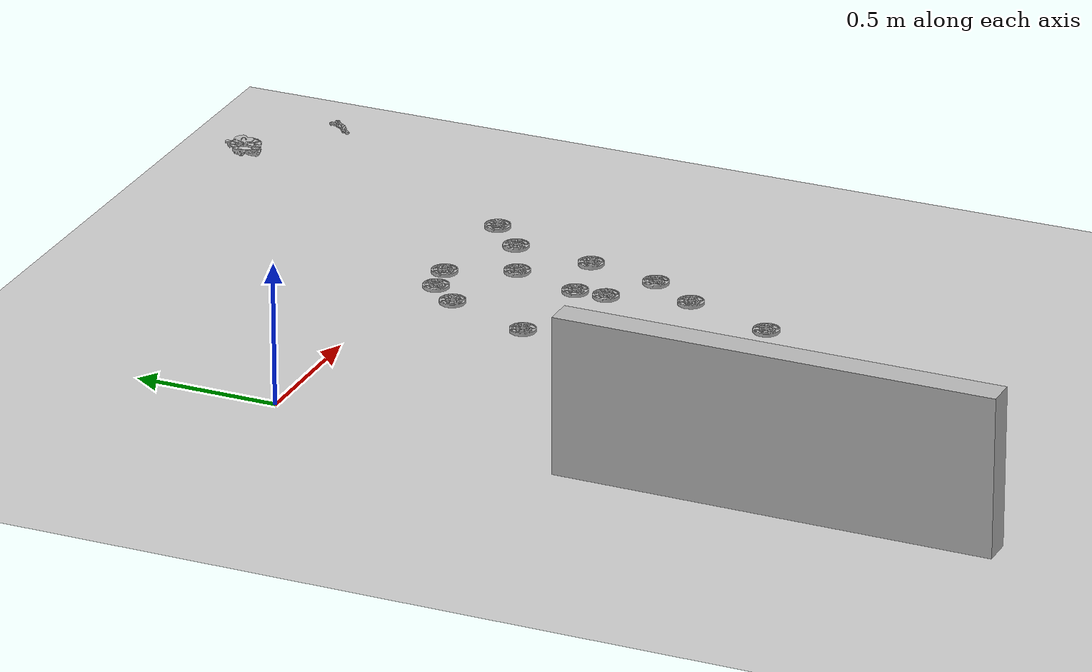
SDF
<sdf version="1.7">
 <world name="default">
  <model name="ground_plane">
   <static>1</static>
   <link name="link">
    <collision name="collision">
     <geometry><plane><normal>0 0 1</normal><size>100 100</size></plane></geometry>
     <surface>
      <contact><collide_bitmask>65535</collide_bitmask></contact>
      <friction><ode><mu>100</mu><mu2>50</mu2></ode></friction>
     </surface>
    </collision>
    <visual name="visual">
     <cast_shadows>0</cast_shadows>
     <geometry><plane><normal>0 0 1</normal><size>100 100</size></plane></geometry>
     <material>
      <script><uri>file://media/materials/scripts/gazebo.material</uri><name>Gazebo/Grey</name></script>
     </material>
    </visual>
   </link>
  </model>
  <model name="HV8">
   <pose>0.966092 -0.194363 0 4.2e-05 1.5e-05 0.009182</pose>
   <static>0</static>
   <link name="HV8">
    <inertial>
     <mass>0.05</mass>
     <inertia><ixx>0.0002</ixx><ixy>0</ixy><ixz>0</ixz><iyy>0.0002</iyy><iyz>0</iyz><izz>0.0002</izz></inertia>
    </inertial>
    <collision name="collishin">
     <geometry><mesh><uri>model://HV8/meshes/HV8_1.stl</uri></mesh></geometry>
    </collision>
    <visual name="visual"><geometry><mesh><uri>model://HV8/meshes/HV8_1.stl</uri></mesh></geometry></visual>
   </link>
  </model>
  <model name="HV8_1">
   <pose>1.46892 -0.203086 -1.8e-05 0.000274 0.000329 0.001747</pose>
   <static>0</static>
   <link name="HV8">
    <inertial>
     <mass>0.05</mass>
     <inertia><ixx>0.0002</ixx><ixy>0</ixy><ixz>0</ixz><iyy>0.0002</iyy><iyz>0</iyz><izz>0.0002</izz></inertia>
    </inertial>
    <collision name="collishin">
     <geometry><mesh><uri>model://HV8/meshes/HV8_1.stl</uri></mesh></geometry>
    </collision>
    <visual name="visual"><geometry><mesh><uri>model://HV8/meshes/HV8_1.stl</uri></mesh></geometry></visual>
   </link>
  </model>
  <model name="HV8_2">
   <pose>1.05789 -0.091912 -1.8e-05 0.000274 0.000329 0.001743</pose>
   <static>0</static>
   <link name="HV8">
    <inertial>
     <mass>0.05</mass>
     <inertia><ixx>0.0002</ixx><ixy>0</ixy><ixz>0</ixz><iyy>0.0002</iyy><iyz>0</iyz><izz>0.0002</izz></inertia>
    </inertial>
    <collision name="collishin">
     <geometry><mesh><uri>model://HV8/meshes/HV8_1.stl</uri></mesh></geometry>
    </collision>
    <visual name="visual"><geometry><mesh><uri>model://HV8/meshes/HV8_1.stl</uri></mesh></geometry></visual>
   </link>
  </model>
  <model name="HV8_7">
   <pose>1.18044 -0.067539 -3e-06 -0.000159 7.4e-05 0.001743</pose>
   <static>0</static>
   <link name="HV8">
    <inertial>
     <mass>0.05</mass>
     <inertia><ixx>0.0002</ixx><ixy>0</ixy><ixz>0</ixz><iyy>0.0002</iyy><iyz>0</iyz><izz>0.0002</izz></inertia>
    </inertial>
    <collision name="collishin">
     <geometry><mesh><uri>model://HV8/meshes/HV8_1.stl</uri></mesh></geometry>
    </collision>
    <visual name="visual"><geometry><mesh><uri>model://HV8/meshes/HV8_1.stl</uri></mesh></geometry></visual>
   </link>
  </model>
  <model name="HV8_8">
   <pose>1.27992 -0.291449 -1.8e-05 0.000274 0.000329 0.001739</pose>
   <static>0</static>
   <link name="HV8">
    <inertial>
     <mass>0.05</mass>
     <inertia><ixx>0.0002</ixx><ixy>0</ixy><ixz>0</ixz><iyy>0.0002</iyy><iyz>0</iyz><izz>0.0002</izz></inertia>
    </inertial>
    <collision name="collishin">
     <geometry><mesh><uri>model://HV8/meshes/HV8_1.stl</uri></mesh></geometry>
    </collision>
    <visual name="visual"><geometry><mesh><uri>model://HV8/meshes/HV8_1.stl</uri></mesh></geometry></visual>
   </link>
  </model>
  <model name="HV8_9">
   <pose>1.20809 -0.535994 -3e-06 -0.000159 7.4e-05 0.001738</pose>
   <static>0</static>
   <link name="HV8">
    <inertial>
     <mass>0.05</mass>
     <inertia><ixx>0.0002</ixx><ixy>0</ixy><ixz>0</ixz><iyy>0.0002</iyy><iyz>0</iyz><izz>0.0002</izz></inertia>
    </inertial>
    <collision name="collishin">
     <geometry><mesh><uri>model://HV8/meshes/HV8_1.stl</uri></mesh></geometry>
    </collision>
    <visual name="visual"><geometry><mesh><uri>model://HV8/meshes/HV8_1.stl</uri></mesh></geometry></visual>
   </link>
  </model>
  <model name="HV8_10">
   <pose>1.01228 -0.727287 -3e-06 -0.000159 7.4e-05 0.002353</pose>
   <static>0</static>
   <link name="HV8">
    <inertial>
     <mass>0.05</mass>
     <inertia><ixx>0.0002</ixx><ixy>0</ixy><ixz>0</ixz><iyy>0.0002</iyy><iyz>0</iyz><izz>0.0002</izz></inertia>
    </inertial>
    <collision name="collishin">
     <geometry><mesh><uri>model://HV8/meshes/HV8_1.stl</uri></mesh></geometry>
    </collision>
    <visual name="visual"><geometry><mesh><uri>model://HV8/meshes/HV8_1.stl</uri></mesh></geometry></visual>
   </link>
  </model>
  <model name="HV8_11">
   <pose>0.857592 -0.819349 -3e-06 -0.000159 7.4e-05 0.001737</pose>
   <static>0</static>
   <link name="HV8">
    <inertial>
     <mass>0.05</mass>
     <inertia><ixx>0.0002</ixx><ixy>0</ixy><ixz>0</ixz><iyy>0.0002</iyy><iyz>0</iyz><izz>0.0002</izz></inertia>
    </inertial>
    <collision name="collishin">
     <geometry><mesh><uri>model://HV8/meshes/HV8_1.stl</uri></mesh></geometry>
    </collision>
    <visual name="visual"><geometry><mesh><uri>model://HV8/meshes/HV8_1.stl</uri></mesh></geometry></visual>
   </link>
  </model>
  <model name="HV8_12">
   <pose>0.823713 -1.11994 3e-06 -0.000164 -2.7e-05 0.001737</pose>
   <static>0</static>
   <link name="HV8">
    <inertial>
     <mass>0.05</mass>
     <inertia><ixx>0.0002</ixx><ixy>0</ixy><ixz>0</ixz><iyy>0.0002</iyy><iyz>0</iyz><izz>0.0002</izz></inertia>
    </inertial>
    <collision name="collishin">
     <geometry><mesh><uri>model://HV8/meshes/HV8_1.stl</uri></mesh></geometry>
    </collision>
    <visual name="visual"><geometry><mesh><uri>model://HV8/meshes/HV8_1.stl</uri></mesh></geometry></visual>
   </link>
  </model>
  <model name="HV8_13">
   <pose>0.850521 -0.502639 -1.8e-05 0.000274 0.000329 0.001737</pose>
   <static>0</static>
   <link name="HV8">
    <inertial>
     <mass>0.05</mass>
     <inertia><ixx>0.0002</ixx><ixy>0</ixy><ixz>0</ixz><iyy>0.0002</iyy><iyz>0</iyz><izz>0.0002</izz></inertia>
    </inertial>
    <collision name="collishin">
     <geometry><mesh><uri>model://HV8/meshes/HV8_1.stl</uri></mesh></geometry>
    </collision>
    <visual name="visual"><geometry><mesh><uri>model://HV8/meshes/HV8_1.stl</uri></mesh></geometry></visual>
   </link>
  </model>
  <model name="HV8_14">
   <pose>0.690646 -0.984533 -3e-06 -0.000159 7.4e-05 0.001737</pose>
   <static>0</static>
   <link name="HV8">
    <inertial>
     <mass>0.05</mass>
     <inertia><ixx>0.0002</ixx><ixy>0</ixy><ixz>0</ixz><iyy>0.0002</iyy><iyz>0</iyz><izz>0.0002</izz></inertia>
    </inertial>
    <collision name="collishin">
     <geometry><mesh><uri>model://HV8/meshes/HV8_1.stl</uri></mesh></geometry>
    </collision>
    <visual name="visual"><geometry><mesh><uri>model://HV8/meshes/HV8_1.stl</uri></mesh></geometry></visual>
   </link>
  </model>
  <model name="HV8_15">
   <pose>1.1708 -1.24347 3e-06 -0.000164 -2.7e-05 0.00174</pose>
   <static>0</static>
   <link name="HV8">
    <inertial>
     <mass>0.05</mass>
     <inertia><ixx>0.0002</ixx><ixy>0</ixy><ixz>0</ixz><iyy>0.0002</iyy><iyz>0</iyz><izz>0.0002</izz></inertia>
    </inertial>
    <collision name="collishin">
     <geometry><mesh><uri>model://HV8/meshes/HV8_1.stl</uri></mesh></geometry>
    </collision>
    <visual name="visual"><geometry><mesh><uri>model://HV8/meshes/HV8_1.stl</uri></mesh></geometry></visual>
   </link>
  </model>
  <model name="HV8_16">
   <pose>1.27763 -0.927282 -1.8e-05 0.000274 0.000329 0.001736</pose>
   <static>0</static>
   <link name="HV8">
    <inertial>
     <mass>0.05</mass>
     <inertia><ixx>0.0002</ixx><ixy>0</ixy><ixz>0</ixz><iyy>0.0002</iyy><iyz>0</iyz><izz>0.0002</izz></inertia>
    </inertial>
    <collision name="collishin">
     <geometry><mesh><uri>model://HV8/meshes/HV8_1.stl</uri></mesh></geometry>
    </collision>
    <visual name="visual"><geometry><mesh><uri>model://HV8/meshes/HV8_1.stl</uri></mesh></geometry></visual>
   </link>
  </model>
  <model name="HV8_17">
   <pose>1.59526 -0.07871 -3e-06 -0.000159 7.4e-05 0.001737</pose>
   <static>0</static>
   <link name="HV8">
    <inertial>
     <mass>0.05</mass>
     <inertia><ixx>0.0002</ixx><ixy>0</ixy><ixz>0</ixz><iyy>0.0002</iyy><iyz>0</iyz><izz>0.0002</izz></inertia>
    </inertial>
    <collision name="collishin">
     <geometry><mesh><uri>model://HV8/meshes/HV8_1.stl</uri></mesh></geometry>
    </collision>
    <visual name="visual"><geometry><mesh><uri>model://HV8/meshes/HV8_1.stl</uri></mesh></geometry></visual>
   </link>
  </model>
  <model name="HV8_26">
   <pose>1.21289 -0.646398 3e-06 -0.000164 -2.7e-05 0.001735</pose>
   <static>0</static>
   <link name="HV8">
    <inertial>
     <mass>0.05</mass>
     <inertia><ixx>0.0002</ixx><ixy>0</ixy><ixz>0</ixz><iyy>0.0002</iyy><iyz>0</iyz><izz>0.0002</izz></inertia>
    </inertial>
    <collision name="collishin">
     <geometry><mesh><uri>model://HV8/meshes/HV8_1.stl</uri></mesh></geometry>
    </collision>
    <visual name="visual"><geometry><mesh><uri>model://HV8/meshes/HV8_1.stl</uri></mesh></geometry></visual>
   </link>
  </model>
  <model name="HV8_27">
   <pose>1.38202 -0.756243 3e-06 -0.000164 -2.7e-05 0.001734</pose>
   <static>0</static>
   <link name="HV8">
    <inertial>
     <mass>0.05</mass>
     <inertia><ixx>0.0002</ixx><ixy>0</ixy><ixz>0</ixz><iyy>0.0002</iyy><iyz>0</iyz><izz>0.0002</izz></inertia>
    </inertial>
    <collision name="collishin">
     <geometry><mesh><uri>model://HV8/meshes/HV8_1.stl</uri></mesh></geometry>
    </collision>
    <visual name="visual"><geometry><mesh><uri>model://HV8/meshes/HV8_1.stl</uri></mesh></geometry></visual>
   </link>
  </model>
  <model name="HV8_28">
   <pose>1.43776 -0.494726 0 4.2e-05 1.5e-05 0.009168</pose>
   <static>0</static>
   <link name="HV8">
    <inertial>
     <mass>0.05</mass>
     <inertia><ixx>0.0002</ixx><ixy>0</ixy><ixz>0</ixz><iyy>0.0002</iyy><iyz>0</iyz><izz>0.0002</izz></inertia>
    </inertial>
    <collision name="collishin">
     <geometry><mesh><uri>model://HV8/meshes/HV8_1.stl</uri></mesh></geometry>
    </collision>
    <visual name="visual"><geometry><mesh><uri>model://HV8/meshes/HV8_1.stl</uri></mesh></geometry></visual>
   </link>
  </model>
  <model name="HV6">
   <pose>-0.333092 -0.066317 1.04904 0 -0 0</pose>
   <static>1</static>
   <link name="HV6">
    <collision name="collr"><geometry><mesh><uri>model://HV6/meshes/HV6_1.stl</uri></mesh></geometry></collision>
    <visual name="visual"><geometry><mesh><uri>model://HV6/meshes/HV6_1.stl</uri></mesh></geometry></visual>
   </link>
  </model>
  <model name="HV7">
   <pose>-0.047157 -0.281478 1.02816 0 -0 0</pose>
   <static>1</static>
   <link name="HV7">
    <inertial>
     <mass>0.2</mass>
     <inertia><ixx>0.0005</ixx><ixy>0</ixy><ixz>0</ixz><iyy>0.0005</iyy><iyz>0</iyz><izz>0.0005</izz></inertia>
    </inertial>
    <collision name="collishin">
     <geometry><mesh><uri>model://HV7/meshes/HV7_1.stl</uri></mesh></geometry>
    </collision>
    <visual name="visual"><geometry><mesh><uri>model://HV7/meshes/HV7_1.stl</uri></mesh></geometry></visual>
   </link>
  </model>
  <model name="collision_object_0">
   <pose>-0.070748 -1.78205 0.274699 -0.000404 -1.9e-05 -0.005211</pose>
   <static>0</static>
   <link name="collision_object">
    <inertial>
     <mass>1</mass>
     <inertia><ixx>0.1</ixx><ixy>0</ixy><ixz>0</ixz><iyy>0.1</iyy><iyz>0</iyz><izz>0.1</izz></inertia>
    </inertial>
    <collision name="collision"><geometry><box><size>0.1 1.5 0.55</size></box></geometry></collision>
    <visual name="visual"><geometry><box><size>0.1 1.5 0.55</size></box></geometry></visual>
   </link>
  </model>
  <model name="HV6_0">
   <pose>0.276255 -0.97563 0 0 -0 0</pose>
   <static>1</static>
   <link name="HV6">
    <collision name="collr"><geometry><mesh><uri>model://HV6/meshes/HV6_1.stl</uri></mesh></geometry></collision>
    <visual name="visual"><geometry><mesh><uri>model://HV6/meshes/HV6_1.stl</uri></mesh></geometry></visual>
   </link>
  </model>
  <model name="HV7_0">
   <pose>0.520451 -1.17701 0 0 -0 0</pose>
   <static>1</static>
   <link name="HV7">
    <inertial>
     <mass>0.2</mass>
     <inertia><ixx>0.0005</ixx><ixy>0</ixy><ixz>0</ixz><iyy>0.0005</iyy><iyz>0</iyz><izz>0.0005</izz></inertia>
    </inertial>
    <collision name="collishin">
     <geometry><mesh><uri>model://HV7/meshes/HV7_1.stl</uri></mesh></geometry>
    </collision>
    <visual name="visual"><geometry><mesh><uri>model://HV7/meshes/HV7_1.stl</uri></mesh></geometry></visual>
   </link>
  </model>
  <model name="t_pipe_0">
   <pose>0.504778 -1.40365 0 0 -0 0</pose>
   <static>1</static>
   <link name="t_pipe">
    <inertial>
     <mass>0.2</mass>
     <inertia><ixx>0.0005</ixx><ixy>0</ixy><ixz>0</ixz><iyy>0.0005</iyy><iyz>0</iyz><izz>0.0005</izz></inertia>
    </inertial>
    <collision name="collishin">
     <geometry><mesh><uri>model://t_pipe/meshes/t_pipe_1.stl</uri></mesh></geometry>
    </collision>
    <visual name="visual"><geometry><mesh><uri>model://t_pipe/meshes/t_pipe_1.stl</uri></mesh></geometry></visual>
   </link>
  </model>
  <model name="HV6_1">
   <pose>0.236712 -1.28095 0 0 -0 0</pose>
   <static>1</static>
   <link name="HV6">
    <collision name="collr"><geometry><mesh><uri>model://HV6/meshes/HV6_1.stl</uri></mesh></geometry></collision>
    <visual name="visual"><geometry><mesh><uri>model://HV6/meshes/HV6_1.stl</uri></mesh></geometry></visual>
   </link>
  </model>
  <model name="HV7_1">
   <pose>0.679298 -1.19587 0 0 -0 0</pose>
   <static>1</static>
   <link name="HV7">
    <inertial>
     <mass>0.2</mass>
     <inertia><ixx>0.0005</ixx><ixy>0</ixy><ixz>0</ixz><iyy>0.0005</iyy><iyz>0</iyz><izz>0.0005</izz></inertia>
    </inertial>
    <collision name="collishin">
     <geometry><mesh><uri>model://HV7/meshes/HV7_1.stl</uri></mesh></geometry>
    </collision>
    <visual name="visual"><geometry><mesh><uri>model://HV7/meshes/HV7_1.stl</uri></mesh></geometry></visual>
   </link>
  </model>
 </world>
</sdf>
